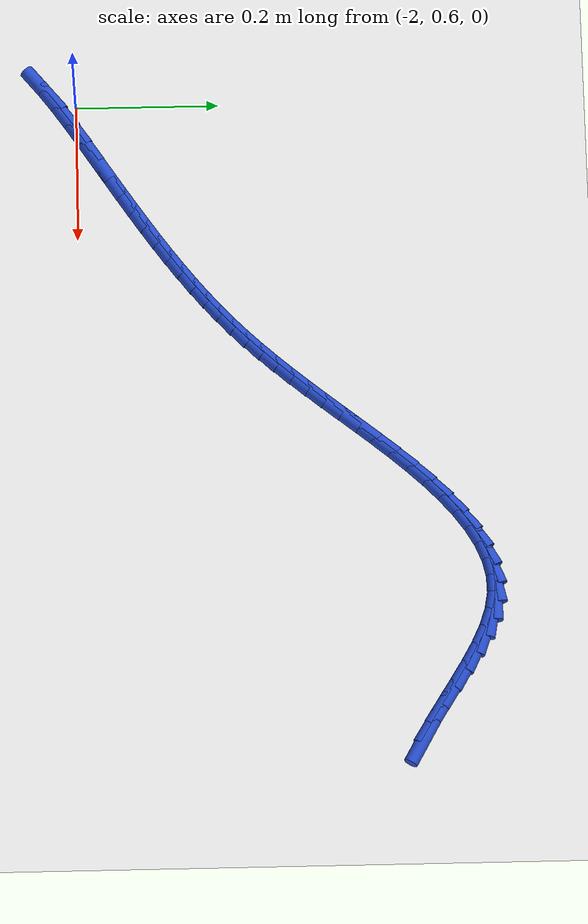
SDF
<sdf version="1.6">
 <world name="default">
  <model name="ground_plane">
   <static>1</static>
   <link name="link">
    <collision name="collision">
     <geometry><plane><normal>0 0 1</normal><size>100 100</size></plane></geometry>
     <surface><friction><ode><mu>100</mu><mu2>50</mu2></ode></friction></surface>
    </collision>
    <visual name="visual">
     <cast_shadows>0</cast_shadows>
     <geometry><plane><normal>0 0 1</normal><size>100 100</size></plane></geometry>
     <material>
      <script><uri>file://media/materials/scripts/gazebo.material</uri><name>Gazebo/WhiteGlow</name></script>
     </material>
    </visual>
   </link>
  </model>
  <model name="line">
   <link name="link_61">
    <pose>-1.0602346076500864 1.062354575641385 0.01 0 1.57 -0.5069172658871428</pose>
    <collision name="collision">
     <geometry><cylinder><radius>0.01</radius><length>0.08</length></cylinder></geometry>
    </collision>
    <visual name="visual">
     <material>
      <script><name>Gazebo/Blue</name><uri>file://media/materials/scripts/gazebo.material</uri></script>
     </material>
     <geometry><cylinder><radius>0.01</radius><length>0.08</length></cylinder></geometry>
    </visual>
   </link>
   <link name="link_62">
    <pose>-1.0866853647894739 1.0770431678572372 0.01 0 1.57 -0.5482343941825718</pose>
    <collision name="collision">
     <geometry><cylinder><radius>0.01</radius><length>0.08</length></cylinder></geometry>
    </collision>
    <visual name="visual">
     <material>
      <script><name>Gazebo/Blue</name><uri>file://media/materials/scripts/gazebo.material</uri></script>
     </material>
     <geometry><cylinder><radius>0.01</radius><length>0.08</length></cylinder></geometry>
    </visual>
   </link>
   <link name="link_63">
    <pose>-1.1129692640267597 1.0930941811773534 0.01 0 1.57 -0.5627561599188768</pose>
    <collision name="collision">
     <geometry><cylinder><radius>0.01</radius><length>0.08</length></cylinder></geometry>
    </collision>
    <visual name="visual">
     <material>
      <script><name>Gazebo/Blue</name><uri>file://media/materials/scripts/gazebo.material</uri></script>
     </material>
     <geometry><cylinder><radius>0.01</radius><length>0.08</length></cylinder></geometry>
    </visual>
   </link>
   <link name="link_64">
    <pose>-1.1390705496266906 1.10955875997048 0.01 0 1.57 -0.5513478173117183</pose>
    <collision name="collision">
     <geometry><cylinder><radius>0.01</radius><length>0.08</length></cylinder></geometry>
    </collision>
    <visual name="visual">
     <material>
      <script><name>Gazebo/Blue</name><uri>file://media/materials/scripts/gazebo.material</uri></script>
     </material>
     <geometry><cylinder><radius>0.01</radius><length>0.08</length></cylinder></geometry>
    </visual>
   </link>
   <link name="link_65">
    <pose>-1.1649734658540136 1.1254880486053636 0.01 0 1.57 -0.5122474441886858</pose>
    <collision name="collision">
     <geometry><cylinder><radius>0.01</radius><length>0.08</length></cylinder></geometry>
    </collision>
    <visual name="visual">
     <material>
      <script><name>Gazebo/Blue</name><uri>file://media/materials/scripts/gazebo.material</uri></script>
     </material>
     <geometry><cylinder><radius>0.01</radius><length>0.08</length></cylinder></geometry>
    </visual>
   </link>
   <link name="link_66">
    <pose>-1.1906622569734768 1.1399331914507516 0.01 0 1.57 -0.44085434919078853</pose>
    <collision name="collision">
     <geometry><cylinder><radius>0.01</radius><length>0.08</length></cylinder></geometry>
    </collision>
    <visual name="visual">
     <material>
      <script><name>Gazebo/Blue</name><uri>file://media/materials/scripts/gazebo.material</uri></script>
     </material>
     <geometry><cylinder><radius>0.01</radius><length>0.08</length></cylinder></geometry>
    </visual>
   </link>
   <link name="link_67">
    <pose>-1.2161211672498269 1.1519453328753901 0.01 0 1.57 -0.3297909480183375</pose>
    <collision name="collision">
     <geometry><cylinder><radius>0.01</radius><length>0.08</length></cylinder></geometry>
    </collision>
    <visual name="visual">
     <material>
      <script><name>Gazebo/Blue</name><uri>file://media/materials/scripts/gazebo.material</uri></script>
     </material>
     <geometry><cylinder><radius>0.01</radius><length>0.08</length></cylinder></geometry>
    </visual>
   </link>
   <link name="link_68">
    <pose>-1.2413344409478113 1.1605756172480266 0.01 0 1.57 -0.17063881139955814</pose>
    <collision name="collision">
     <geometry><cylinder><radius>0.01</radius><length>0.08</length></cylinder></geometry>
    </collision>
    <visual name="visual">
     <material>
      <script><name>Gazebo/Blue</name><uri>file://media/materials/scripts/gazebo.material</uri></script>
     </material>
     <geometry><cylinder><radius>0.01</radius><length>0.08</length></cylinder></geometry>
    </visual>
   </link>
   <link name="link_69">
    <pose>-1.2662863223321768 1.164875188937407 0.01 0 1.57 0.029843055542941962</pose>
    <collision name="collision">
     <geometry><cylinder><radius>0.01</radius><length>0.08</length></cylinder></geometry>
    </collision>
    <visual name="visual">
     <material>
      <script><name>Gazebo/Blue</name><uri>file://media/materials/scripts/gazebo.material</uri></script>
     </material>
     <geometry><cylinder><radius>0.01</radius><length>0.08</length></cylinder></geometry>
    </visual>
   </link>
   <link name="link_70">
    <pose>-1.290959012219271 1.164138661817423 0.01 0 1.57 0.22186454377405926</pose>
    <collision name="collision">
     <geometry><cylinder><radius>0.01</radius><length>0.08</length></cylinder></geometry>
    </collision>
    <visual name="visual">
     <material>
      <script><name>Gazebo/Blue</name><uri>file://media/materials/scripts/gazebo.material</uri></script>
     </material>
     <geometry><cylinder><radius>0.01</radius><length>0.08</length></cylinder></geometry>
    </visual>
   </link>
   <link name="link_71">
    <pose>-1.3153264757767824 1.1586418975890902 0.01 0 1.57 0.38481462052830356</pose>
    <collision name="collision">
     <geometry><cylinder><radius>0.01</radius><length>0.08</length></cylinder></geometry>
    </collision>
    <visual name="visual">
     <material>
      <script><name>Gazebo/Blue</name><uri>file://media/materials/scripts/gazebo.material</uri></script>
     </material>
     <geometry><cylinder><radius>0.01</radius><length>0.08</length></cylinder></geometry>
    </visual>
   </link>
   <link name="link_72">
    <pose>-1.3393606036796326 1.1489079262831188 0.01 0 1.57 0.5166236148874366</pose>
    <collision name="collision">
     <geometry><cylinder><radius>0.01</radius><length>0.08</length></cylinder></geometry>
    </collision>
    <visual name="visual">
     <material>
      <script><name>Gazebo/Blue</name><uri>file://media/materials/scripts/gazebo.material</uri></script>
     </material>
     <geometry><cylinder><radius>0.01</radius><length>0.08</length></cylinder></geometry>
    </visual>
   </link>
   <link name="link_73">
    <pose>-1.363033286602708 1.1354597779341127 0.01 0 1.57 0.6204908735923226</pose>
    <collision name="collision">
     <geometry><cylinder><radius>0.01</radius><length>0.08</length></cylinder></geometry>
    </collision>
    <visual name="visual">
     <material>
      <script><name>Gazebo/Blue</name><uri>file://media/materials/scripts/gazebo.material</uri></script>
     </material>
     <geometry><cylinder><radius>0.01</radius><length>0.08</length></cylinder></geometry>
    </visual>
   </link>
   <link name="link_74">
    <pose>-1.386316415220898 1.1188204825766745 0.01 0 1.57 0.7012292217446031</pose>
    <collision name="collision">
     <geometry><cylinder><radius>0.01</radius><length>0.08</length></cylinder></geometry>
    </collision>
    <visual name="visual">
     <material>
      <script><name>Gazebo/Blue</name><uri>file://media/materials/scripts/gazebo.material</uri></script>
     </material>
     <geometry><cylinder><radius>0.01</radius><length>0.08</length></cylinder></geometry>
    </visual>
   </link>
   <link name="link_75">
    <pose>-1.409181880209089 1.099513070245407 0.01 0 1.57 0.7633560430866422</pose>
    <collision name="collision">
     <geometry><cylinder><radius>0.01</radius><length>0.08</length></cylinder></geometry>
    </collision>
    <visual name="visual">
     <material>
      <script><name>Gazebo/Blue</name><uri>file://media/materials/scripts/gazebo.material</uri></script>
     </material>
     <geometry><cylinder><radius>0.01</radius><length>0.08</length></cylinder></geometry>
    </visual>
   </link>
   <link name="link_76">
    <pose>-1.431601572242169 1.0780605709749145 0.01 0 1.57 0.8104648188535937</pose>
    <collision name="collision">
     <geometry><cylinder><radius>0.01</radius><length>0.08</length></cylinder></geometry>
    </collision>
    <visual name="visual">
     <material>
      <script><name>Gazebo/Blue</name><uri>file://media/materials/scripts/gazebo.material</uri></script>
     </material>
     <geometry><cylinder><radius>0.01</radius><length>0.08</length></cylinder></geometry>
    </visual>
   </link>
   <link name="link_77">
    <pose>-1.4535473819950262 1.0549860147997996 0.01 0 1.57 0.8451673192801279</pose>
    <collision name="collision">
     <geometry><cylinder><radius>0.01</radius><length>0.08</length></cylinder></geometry>
    </collision>
    <visual name="visual">
     <material>
      <script><name>Gazebo/Blue</name><uri>file://media/materials/scripts/gazebo.material</uri></script>
     </material>
     <geometry><cylinder><radius>0.01</radius><length>0.08</length></cylinder></geometry>
    </visual>
   </link>
   <link name="link_78">
    <pose>-1.474991200142548 1.0308124317546654 0.01 0 1.57 0.8692045961763517</pose>
    <collision name="collision">
     <geometry><cylinder><radius>0.01</radius><length>0.08</length></cylinder></geometry>
    </collision>
    <visual name="visual">
     <material>
      <script><name>Gazebo/Blue</name><uri>file://media/materials/scripts/gazebo.material</uri></script>
     </material>
     <geometry><cylinder><radius>0.01</radius><length>0.08</length></cylinder></geometry>
    </visual>
   </link>
   <link name="link_79">
    <pose>-1.495904917359622 1.0060628518741155 0.01 0 1.57 0.88355888970354</pose>
    <collision name="collision">
     <geometry><cylinder><radius>0.01</radius><length>0.08</length></cylinder></geometry>
    </collision>
    <visual name="visual">
     <material>
      <script><name>Gazebo/Blue</name><uri>file://media/materials/scripts/gazebo.material</uri></script>
     </material>
     <geometry><cylinder><radius>0.01</radius><length>0.08</length></cylinder></geometry>
    </visual>
   </link>
   <link name="link_80">
    <pose>-1.5162604243211362 0.9812603051927532 0.01 0 1.57 0.8885071160597983</pose>
    <collision name="collision">
     <geometry><cylinder><radius>0.01</radius><length>0.08</length></cylinder></geometry>
    </collision>
    <visual name="visual">
     <material>
      <script><name>Gazebo/Blue</name><uri>file://media/materials/scripts/gazebo.material</uri></script>
     </material>
     <geometry><cylinder><radius>0.01</radius><length>0.08</length></cylinder></geometry>
    </visual>
   </link>
   <link name="link_81">
    <pose>-1.5360297327742674 0.9569274891558052 0.01 0 1.57 0.8852144928259906</pose>
    <collision name="collision">
     <geometry><cylinder><radius>0.01</radius><length>0.08</length></cylinder></geometry>
    </collision>
    <visual name="visual">
     <material>
      <script><name>Gazebo/Blue</name><uri>file://media/materials/scripts/gazebo.material</uri></script>
     </material>
     <geometry><cylinder><radius>0.01</radius><length>0.08</length></cylinder></geometry>
    </visual>
   </link>
   <link name="link_82">
    <pose>-1.5552363377318323 0.933445675063212 0.01 0 1.57 0.877185105085217</pose>
    <collision name="collision">
     <geometry><cylinder><radius>0.01</radius><length>0.08</length></cylinder></geometry>
    </collision>
    <visual name="visual">
     <material>
      <script><name>Gazebo/Blue</name><uri>file://media/materials/scripts/gazebo.material</uri></script>
     </material>
     <geometry><cylinder><radius>0.01</radius><length>0.08</length></cylinder></geometry>
    </visual>
   </link>
   <link name="link_83">
    <pose>-1.574035018922522 0.9108354909831755 0.01 0 1.57 0.8647640556151011</pose>
    <collision name="collision">
     <geometry><cylinder><radius>0.01</radius><length>0.08</length></cylinder></geometry>
    </collision>
    <visual name="visual">
     <material>
      <script><name>Gazebo/Blue</name><uri>file://media/materials/scripts/gazebo.material</uri></script>
     </material>
     <geometry><cylinder><radius>0.01</radius><length>0.08</length></cylinder></geometry>
    </visual>
   </link>
   <link name="link_84">
    <pose>-1.5926011792018993 0.8890609126076093 0.01 0 1.57 0.8477716207695831</pose>
    <collision name="collision">
     <geometry><cylinder><radius>0.01</radius><length>0.08</length></cylinder></geometry>
    </collision>
    <visual name="visual">
     <material>
      <script><name>Gazebo/Blue</name><uri>file://media/materials/scripts/gazebo.material</uri></script>
     </material>
     <geometry><cylinder><radius>0.01</radius><length>0.08</length></cylinder></geometry>
    </visual>
   </link>
   <link name="link_85">
    <pose>-1.6111102214255282 0.8680859156284279 0.01 0 1.57 0.8261624677467063</pose>
    <collision name="collision">
     <geometry><cylinder><radius>0.01</radius><length>0.08</length></cylinder></geometry>
    </collision>
    <visual name="visual">
     <material>
      <script><name>Gazebo/Blue</name><uri>file://media/materials/scripts/gazebo.material</uri></script>
     </material>
     <geometry><cylinder><radius>0.01</radius><length>0.08</length></cylinder></geometry>
    </visual>
   </link>
   <link name="link_86">
    <pose>-1.6297375484489727 0.8478744757375452 0.01 0 1.57 0.8000538925006098</pose>
    <collision name="collision">
     <geometry><cylinder><radius>0.01</radius><length>0.08</length></cylinder></geometry>
    </collision>
    <visual name="visual">
     <material>
      <script><name>Gazebo/Blue</name><uri>file://media/materials/scripts/gazebo.material</uri></script>
     </material>
     <geometry><cylinder><radius>0.01</radius><length>0.08</length></cylinder></geometry>
    </visual>
   </link>
   <link name="link_87">
    <pose>-1.648658563127795 0.8283905686268748 0.01 0 1.57 0.7697563709807892</pose>
    <collision name="collision">
     <geometry><cylinder><radius>0.01</radius><length>0.08</length></cylinder></geometry>
    </collision>
    <visual name="visual">
     <material>
      <script><name>Gazebo/Blue</name><uri>file://media/materials/scripts/gazebo.material</uri></script>
     </material>
     <geometry><cylinder><radius>0.01</radius><length>0.08</length></cylinder></geometry>
    </visual>
   </link>
   <link name="link_88">
    <pose>-1.6680483440592082 0.8095980756112806 0.01 0 1.57 0.7375139780028518</pose>
    <collision name="collision">
     <geometry><cylinder><radius>0.01</radius><length>0.08</length></cylinder></geometry>
    </collision>
    <visual name="visual">
     <material>
      <script><name>Gazebo/Blue</name><uri>file://media/materials/scripts/gazebo.material</uri></script>
     </material>
     <geometry><cylinder><radius>0.01</radius><length>0.08</length></cylinder></geometry>
    </visual>
   </link>
   <link name="link_89">
    <pose>-1.6880284720203627 0.7914453071915782 0.01 0 1.57 0.7074485619991128</pose>
    <collision name="collision">
     <geometry><cylinder><radius>0.01</radius><length>0.08</length></cylinder></geometry>
    </collision>
    <visual name="visual">
     <material>
      <script><name>Gazebo/Blue</name><uri>file://media/materials/scripts/gazebo.material</uri></script>
     </material>
     <geometry><cylinder><radius>0.01</radius><length>0.08</length></cylinder></geometry>
    </visual>
   </link>
   <link name="link_90">
    <pose>-1.7086079045577716 0.7738477943015009 0.01 0 1.57 0.6802490415998033</pose>
    <collision name="collision">
     <geometry><cylinder><radius>0.01</radius><length>0.08</length></cylinder></geometry>
    </collision>
    <visual name="visual">
     <material>
      <script><name>Gazebo/Blue</name><uri>file://media/materials/scripts/gazebo.material</uri></script>
     </material>
     <geometry><cylinder><radius>0.01</radius><length>0.08</length></cylinder></geometry>
    </visual>
   </link>
   <link name="link_91">
    <pose>-1.7297813528780102 0.7567169214047048 0.01 0 1.57 0.6560625514744264</pose>
    <collision name="collision">
     <geometry><cylinder><radius>0.01</radius><length>0.08</length></cylinder></geometry>
    </collision>
    <visual name="visual">
     <material>
      <script><name>Gazebo/Blue</name><uri>file://media/materials/scripts/gazebo.material</uri></script>
     </material>
     <geometry><cylinder><radius>0.01</radius><length>0.08</length></cylinder></geometry>
    </visual>
   </link>
   <link name="link_92">
    <pose>-1.7515435281876521 0.7399640729648465 0.01 0 1.57 0.6349759942734479</pose>
    <collision name="collision">
     <geometry><cylinder><radius>0.01</radius><length>0.08</length></cylinder></geometry>
    </collision>
    <visual name="visual">
     <material>
      <script><name>Gazebo/Blue</name><uri>file://media/materials/scripts/gazebo.material</uri></script>
     </material>
     <geometry><cylinder><radius>0.01</radius><length>0.08</length></cylinder></geometry>
    </visual>
   </link>
   <link name="link_93">
    <pose>-1.7738891416932738 0.7235006334455826 0.01 0 1.57 0.617022212133901</pose>
    <collision name="collision">
     <geometry><cylinder><radius>0.01</radius><length>0.08</length></cylinder></geometry>
    </collision>
    <visual name="visual">
     <material>
      <script><name>Gazebo/Blue</name><uri>file://media/materials/scripts/gazebo.material</uri></script>
     </material>
     <geometry><cylinder><radius>0.01</radius><length>0.08</length></cylinder></geometry>
    </visual>
   </link>
   <link name="link_94">
    <pose>-1.7968129046014498 0.7072379873105693 0.01 0 1.57 0.6021873353261954</pose>
    <collision name="collision">
     <geometry><cylinder><radius>0.01</radius><length>0.08</length></cylinder></geometry>
    </collision>
    <visual name="visual">
     <material>
      <script><name>Gazebo/Blue</name><uri>file://media/materials/scripts/gazebo.material</uri></script>
     </material>
     <geometry><cylinder><radius>0.01</radius><length>0.08</length></cylinder></geometry>
    </visual>
   </link>
   <link name="link_95">
    <pose>-1.8203095281187556 0.6910875190234638 0.01 0 1.57 0.5904184529657388</pose>
    <collision name="collision">
     <geometry><cylinder><radius>0.01</radius><length>0.08</length></cylinder></geometry>
    </collision>
    <visual name="visual">
     <material>
      <script><name>Gazebo/Blue</name><uri>file://media/materials/scripts/gazebo.material</uri></script>
     </material>
     <geometry><cylinder><radius>0.01</radius><length>0.08</length></cylinder></geometry>
    </visual>
   </link>
   <link name="link_96">
    <pose>-1.8443737234517654 0.6749606130479218 0.01 0 1.57 0.5816309813004518</pose>
    <collision name="collision">
     <geometry><cylinder><radius>0.01</radius><length>0.08</length></cylinder></geometry>
    </collision>
    <visual name="visual">
     <material>
      <script><name>Gazebo/Blue</name><uri>file://media/materials/scripts/gazebo.material</uri></script>
     </material>
     <geometry><cylinder><radius>0.01</radius><length>0.08</length></cylinder></geometry>
    </visual>
   </link>
   <link name="link_97">
    <pose>-1.8690002018070546 0.6587686538476003 0.01 0 1.57 0.575715336528022</pose>
    <collision name="collision">
     <geometry><cylinder><radius>0.01</radius><length>0.08</length></cylinder></geometry>
    </collision>
    <visual name="visual">
     <material>
      <script><name>Gazebo/Blue</name><uri>file://media/materials/scripts/gazebo.material</uri></script>
     </material>
     <geometry><cylinder><radius>0.01</radius><length>0.08</length></cylinder></geometry>
    </visual>
   </link>
   <link name="link_98">
    <pose>-1.8941836743911988 0.6424230258861559 0.01 0 1.57 0.5725427168694164</pose>
    <collision name="collision">
     <geometry><cylinder><radius>0.01</radius><length>0.08</length></cylinder></geometry>
    </collision>
    <visual name="visual">
     <material>
      <script><name>Gazebo/Blue</name><uri>file://media/materials/scripts/gazebo.material</uri></script>
     </material>
     <geometry><cylinder><radius>0.01</radius><length>0.08</length></cylinder></geometry>
    </visual>
   </link>
   <link name="link_99">
    <pose>-1.9199188524107722 0.6258351136272449 0.01 0 1.57 0.5726785111142351</pose>
    <collision name="collision">
     <geometry><cylinder><radius>0.01</radius><length>0.08</length></cylinder></geometry>
    </collision>
    <visual name="visual">
     <material>
      <script><name>Gazebo/Blue</name><uri>file://media/materials/scripts/gazebo.material</uri></script>
     </material>
     <geometry><cylinder><radius>0.01</radius><length>0.08</length></cylinder></geometry>
    </visual>
   </link>
   <link name="link_100">
    <pose>-1.946158968850804 0.6089166932705591 0.01 0 1.57 0.5814454685990474</pose>
    <collision name="collision">
     <geometry><cylinder><radius>0.01</radius><length>0.08</length></cylinder></geometry>
    </collision>
    <visual name="visual">
     <material>
      <script><name>Gazebo/Blue</name><uri>file://media/materials/scripts/gazebo.material</uri></script>
     </material>
     <geometry><cylinder><radius>0.01</radius><length>0.08</length></cylinder></geometry>
    </visual>
   </link>
   <link name="link_101">
    <pose>-1.9725331824543697 0.5915826016956836 0.01 0 1.57 0.6014703534055507</pose>
    <collision name="collision">
     <geometry><cylinder><radius>0.01</radius><length>0.08</length></cylinder></geometry>
    </collision>
    <visual name="visual">
     <material>
      <script><name>Gazebo/Blue</name><uri>file://media/materials/scripts/gazebo.material</uri></script>
     </material>
     <geometry><cylinder><radius>0.01</radius><length>0.08</length></cylinder></geometry>
    </visual>
   </link>
   <link name="link_102">
    <pose>-1.9985182485374873 0.5737491151378953 0.01 0 1.57 0.6335425476308465</pose>
    <collision name="collision">
     <geometry><cylinder><radius>0.01</radius><length>0.08</length></cylinder></geometry>
    </collision>
    <visual name="visual">
     <material>
      <script><name>Gazebo/Blue</name><uri>file://media/materials/scripts/gazebo.material</uri></script>
     </material>
     <geometry><cylinder><radius>0.01</radius><length>0.08</length></cylinder></geometry>
    </visual>
   </link>
   <link name="link_103">
    <pose>-2.023590036236087 0.5553325182018917 0.01 0 1.57 0.6792631453271712</pose>
    <collision name="collision">
     <geometry><cylinder><radius>0.01</radius><length>0.08</length></cylinder></geometry>
    </collision>
    <visual name="visual">
     <material>
      <script><name>Gazebo/Blue</name><uri>file://media/materials/scripts/gazebo.material</uri></script>
     </material>
     <geometry><cylinder><radius>0.01</radius><length>0.08</length></cylinder></geometry>
    </visual>
   </link>
  </model>
 </world>
</sdf>
